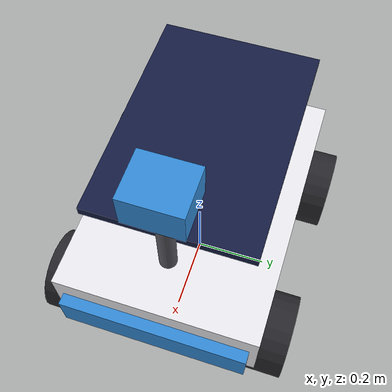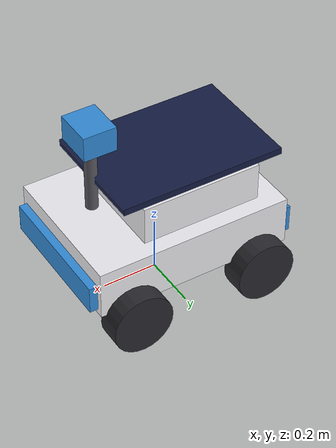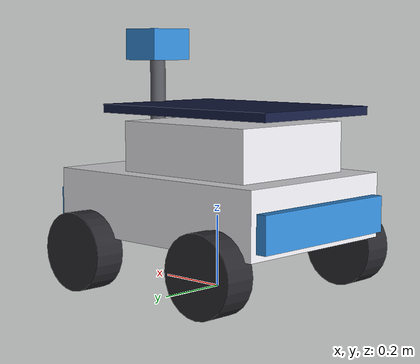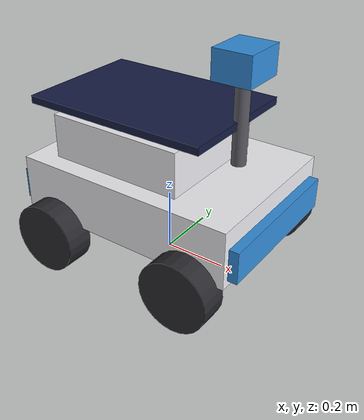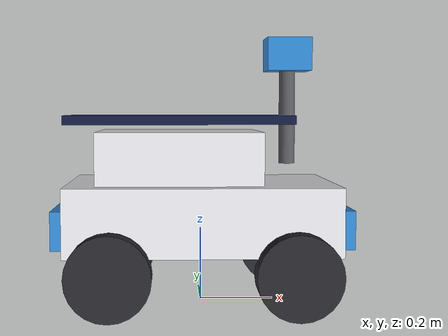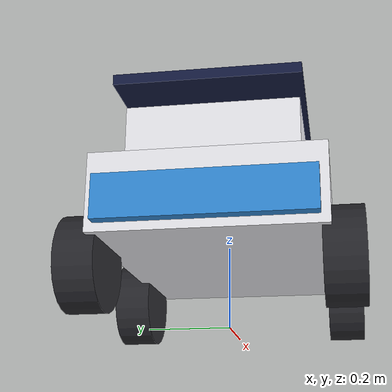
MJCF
<mujoco model="pyunto_s1">
  <compiler angle="radian" autolimits="true"/>

  <default>
    <default class="s1">
      <geom type="box" condim="3" friction="1.2 0.05 0.01" density="500" group="1"/>
      <joint type="hinge" damping="1.2" armature="0.01" limited="true"/>
      <default class="s1_wheel">
        <geom type="cylinder" size="0.11 0.045" condim="4"
              friction="1.6 0.06 0.02" density="700" rgba="0.16 0.16 0.18 1"/>
        <joint type="hinge" axis="0 1 0" damping="0.35" armature="0.008" limited="false"/>
      </default>
    </default>
  </default>

  <asset>
    <material name="s1_body" rgba="0.93 0.93 0.95 1" specular="0.3" shininess="0.4"/>
    <material name="s1_trim" rgba="0.20 0.55 0.85 1" specular="0.4"/>
    <!-- Dark blue-black with a strong specular: what a photovoltaic panel looks like, and
         visibly different from the body so the panel reads at a glance. -->
    <material name="s1_panel" rgba="0.08 0.11 0.26 1" specular="0.85" shininess="0.85"/>
    <material name="s1_mast" rgba="0.35 0.35 0.38 1" specular="0.3"/>
  </asset>

  <worldbody>
    <body name="base" pos="0 0 0.24" childclass="s1">
      <freejoint name="root"/>
      <inertial pos="0 0 0" mass="18" diaginertia="0.55 0.75 0.95"/>

      <geom name="chassis" type="box" size="0.36 0.26 0.09" material="s1_body"/>
      <geom name="bumper_f" type="box" pos="0.37 0 -0.02" size="0.02 0.24 0.05" material="s1_trim"/>
      <geom name="bumper_r" type="box" pos="-0.37 0 -0.02" size="0.02 0.24 0.05" material="s1_trim"/>
      <!-- Cargo box: this is a delivery-shaped robot, and it gives the panel something to
           sit above without shading the camera. -->
      <geom name="cargo" type="box" pos="-0.06 0 0.16" size="0.22 0.20 0.07" material="s1_body"/>

      <body name="panel_mount" pos="-0.06 0 0.25">
        <joint name="panel_tilt" axis="0 1 0" range="-0.9 0.9" damping="2.0"/>
        <geom name="solar_panel" type="box" pos="0 0 0.012" size="0.30 0.21 0.012"
              material="s1_panel" density="250"/>
      </body>

      <!-- Camera mast, forward of the panel so the panel never shades the lens. -->
      <body name="mast" pos="0.24 0 0.14">
        <geom name="mast_post" type="cylinder" size="0.022 0.14" pos="0 0 0.14" material="s1_mast"/>
        <body name="head" pos="0 0 0.30">
          <joint name="neck_yaw" axis="0 0 1" range="-1.8 1.8" damping="0.6"/>
          <geom name="head_shell" type="box" size="0.06 0.07 0.045" material="s1_trim"/>
          <!--
            Looking along +x with z up, matching the humanoid and the rover exactly. Every
            piece of perception in this project assumes this orientation.
          -->
          <camera name="head_cam" pos="0.055 0 0.01" xyaxes="0 -1 0  0 0 1" fovy="70"/>
        </body>
      </body>

      <body name="wheel_lf" pos="0.24 0.285 -0.13">
        <joint name="drive_lf" class="s1_wheel"/>
        <geom name="tyre_lf" class="s1_wheel" euler="1.5708 0 0"/>
      </body>
      <body name="wheel_rf" pos="0.24 -0.285 -0.13">
        <joint name="drive_rf" class="s1_wheel"/>
        <geom name="tyre_rf" class="s1_wheel" euler="1.5708 0 0"/>
      </body>
      <body name="wheel_lr" pos="-0.24 0.285 -0.13">
        <joint name="drive_lr" class="s1_wheel"/>
        <geom name="tyre_lr" class="s1_wheel" euler="1.5708 0 0"/>
      </body>
      <body name="wheel_rr" pos="-0.24 -0.285 -0.13">
        <joint name="drive_rr" class="s1_wheel"/>
        <geom name="tyre_rr" class="s1_wheel" euler="1.5708 0 0"/>
      </body>
    </body>
  </worldbody>

  <actuator>
    <velocity name="drive_lf" joint="drive_lf" kv="9" ctrlrange="-18 18"/>
    <velocity name="drive_rf" joint="drive_rf" kv="9" ctrlrange="-18 18"/>
    <velocity name="drive_lr" joint="drive_lr" kv="9" ctrlrange="-18 18"/>
    <velocity name="drive_rr" joint="drive_rr" kv="9" ctrlrange="-18 18"/>
    <position name="neck_yaw" joint="neck_yaw" kp="12" ctrlrange="-1.8 1.8"/>
    <position name="panel_tilt" joint="panel_tilt" kp="25" ctrlrange="-0.9 0.9"/>
  </actuator>

  <keyframe>
    <!--
      qpos layout: 7 free joint + panel_tilt + neck_yaw + 4 wheels = 13.
      The order follows the body tree: panel_mount, then mast/head, then the wheels.
    -->
    <key name="stand" qpos="0 0 0.24  1 0 0 0   0 0   0 0 0 0"/>
  </keyframe>
</mujoco>
